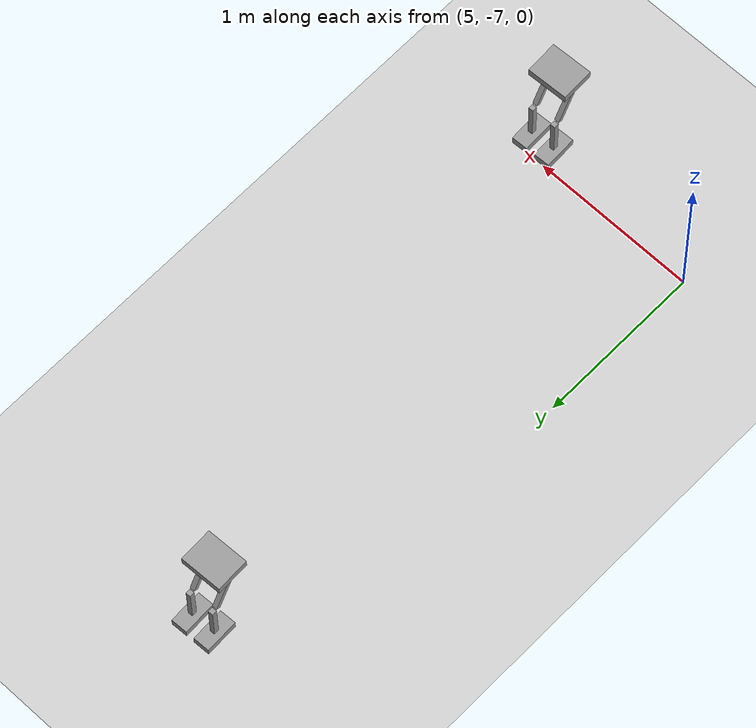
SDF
<sdf version="1.6">
 <world name="default">
  <model name="ground_plane">
   <static>1</static>
   <link name="link">
    <collision name="collision">
     <geometry><plane><normal>0 0 1</normal><size>100 100</size></plane></geometry>
     <surface><friction><ode><mu>100</mu><mu2>50</mu2></ode></friction></surface>
    </collision>
    <visual name="visual">
     <cast_shadows>0</cast_shadows>
     <geometry><plane><normal>0 0 1</normal><size>100 100</size></plane></geometry>
     <material>
      <script><uri>file://media/materials/scripts/gazebo.material</uri><name>Gazebo/Grey</name></script>
     </material>
    </visual>
   </link>
  </model>
  <model name="HumonoidRobot">
   <link name="link_0">
    <pose>-0.075081 0.045022 -0.236474 0 -0 0</pose>
    <inertial>
     <mass>1</mass>
     <inertia>
      <ixx>0.166667</ixx>
      <ixy>0</ixy>
      <ixz>0</ixz>
      <iyy>0.166667</iyy>
      <iyz>0</iyz>
      <izz>0.166667</izz>
     </inertia>
    </inertial>
    <visual name="visual">
     <geometry><box><size>0.1 0.2 0.05</size></box></geometry>
     <material>
      <lighting>1</lighting>
      <script><uri>file://media/materials/scripts/gazebo.material</uri><name>Gazebo/Grey</name></script>
      <shader type="pixel"><normal_map>__default__</normal_map></shader>
      <ambient>0.3 0.3 0.3 1</ambient>
      <diffuse>0.7 0.7 0.7 1</diffuse>
      <specular>0.01 0.01 0.01 1</specular>
      <emissive>0 0 0 1</emissive>
     </material>
    </visual>
    <collision name="collision">
     <geometry><box><size>0.1 0.2 0.05</size></box></geometry>
     <surface>
      <friction>
       <ode><mu>1</mu><mu2>1</mu2><fdir1>0 0 0</fdir1><slip1>0</slip1><slip2>0</slip2></ode>
       <torsional>
        <coefficient>1</coefficient>
        <patch_radius>0</patch_radius>
        <surface_radius>0</surface_radius>
        <use_patch_radius>1</use_patch_radius>
        <ode><slip>0</slip></ode>
       </torsional>
      </friction>
      <bounce><restitution_coefficient>0</restitution_coefficient><threshold>1e+06</threshold></bounce>
      <contact>
       <collide_without_contact>0</collide_without_contact>
       <collide_without_contact_bitmask>1</collide_without_contact_bitmask>
       <collide_bitmask>1</collide_bitmask>
       <ode>
        <soft_cfm>0</soft_cfm>
        <soft_erp>0.2</soft_erp>
        <kp>1e+13</kp>
        <kd>1</kd>
        <max_vel>0.01</max_vel>
        <min_depth>0</min_depth>
       </ode>
       <bullet>
        <split_impulse>1</split_impulse>
        <split_impulse_penetration_threshold>-0.01</split_impulse_penetration_threshold>
        <soft_cfm>0</soft_cfm>
        <soft_erp>0.2</soft_erp>
        <kp>1e+13</kp>
        <kd>1</kd>
       </bullet>
      </contact>
     </surface>
    </collision>
   </link>
   <link name="link_0_clone">
    <pose>0.074919 0.045022 -0.236474 0 -0 0</pose>
    <inertial>
     <mass>1</mass>
     <inertia>
      <ixx>0.166667</ixx>
      <ixy>0</ixy>
      <ixz>0</ixz>
      <iyy>0.166667</iyy>
      <iyz>0</iyz>
      <izz>0.166667</izz>
     </inertia>
    </inertial>
    <visual name="visual">
     <geometry><box><size>0.1 0.2 0.05</size></box></geometry>
     <material>
      <lighting>1</lighting>
      <script><uri>file://media/materials/scripts/gazebo.material</uri><name>Gazebo/Grey</name></script>
      <shader type="pixel"><normal_map>__default__</normal_map></shader>
      <ambient>0.3 0.3 0.3 1</ambient>
      <diffuse>0.7 0.7 0.7 1</diffuse>
      <specular>0.01 0.01 0.01 1</specular>
      <emissive>0 0 0 1</emissive>
     </material>
    </visual>
    <collision name="collision">
     <geometry><box><size>0.1 0.2 0.05</size></box></geometry>
     <surface>
      <friction>
       <ode><mu>1</mu><mu2>1</mu2><fdir1>0 0 0</fdir1><slip1>0</slip1><slip2>0</slip2></ode>
       <torsional>
        <coefficient>1</coefficient>
        <patch_radius>0</patch_radius>
        <surface_radius>0</surface_radius>
        <use_patch_radius>1</use_patch_radius>
        <ode><slip>0</slip></ode>
       </torsional>
      </friction>
      <bounce><restitution_coefficient>0</restitution_coefficient><threshold>1e+06</threshold></bounce>
      <contact>
       <collide_without_contact>0</collide_without_contact>
       <collide_without_contact_bitmask>1</collide_without_contact_bitmask>
       <collide_bitmask>1</collide_bitmask>
       <ode>
        <soft_cfm>0</soft_cfm>
        <soft_erp>0.2</soft_erp>
        <kp>1e+13</kp>
        <kd>1</kd>
        <max_vel>0.01</max_vel>
        <min_depth>0</min_depth>
       </ode>
       <bullet>
        <split_impulse>1</split_impulse>
        <split_impulse_penetration_threshold>-0.01</split_impulse_penetration_threshold>
        <soft_cfm>0</soft_cfm>
        <soft_erp>0.2</soft_erp>
        <kp>1e+13</kp>
        <kd>1</kd>
       </bullet>
      </contact>
     </surface>
    </collision>
   </link>
   <link name="link_0_clone_0">
    <pose>0.000486 -0.069978 0.341184 0 -0 0</pose>
    <inertial>
     <mass>1</mass>
     <inertia>
      <ixx>0.166667</ixx>
      <ixy>0</ixy>
      <ixz>0</ixz>
      <iyy>0.166667</iyy>
      <iyz>0</iyz>
      <izz>0.166667</izz>
     </inertia>
    </inertial>
    <visual name="visual">
     <geometry><box><size>0.25 0.2 0.05</size></box></geometry>
     <material>
      <lighting>1</lighting>
      <script><uri>file://media/materials/scripts/gazebo.material</uri><name>Gazebo/Grey</name></script>
      <shader type="pixel"><normal_map>__default__</normal_map></shader>
      <ambient>0.3 0.3 0.3 1</ambient>
      <diffuse>0.7 0.7 0.7 1</diffuse>
      <specular>0.01 0.01 0.01 1</specular>
      <emissive>0 0 0 1</emissive>
     </material>
    </visual>
    <collision name="collision">
     <geometry><box><size>0.25 0.2 0.05</size></box></geometry>
     <surface>
      <friction>
       <ode><mu>1</mu><mu2>1</mu2><fdir1>0 0 0</fdir1><slip1>0</slip1><slip2>0</slip2></ode>
       <torsional>
        <coefficient>1</coefficient>
        <patch_radius>0</patch_radius>
        <surface_radius>0</surface_radius>
        <use_patch_radius>1</use_patch_radius>
        <ode><slip>0</slip></ode>
       </torsional>
      </friction>
      <bounce><restitution_coefficient>0</restitution_coefficient><threshold>1e+06</threshold></bounce>
      <contact>
       <collide_without_contact>0</collide_without_contact>
       <collide_without_contact_bitmask>1</collide_without_contact_bitmask>
       <collide_bitmask>1</collide_bitmask>
       <ode>
        <soft_cfm>0</soft_cfm>
        <soft_erp>0.2</soft_erp>
        <kp>1e+13</kp>
        <kd>1</kd>
        <max_vel>0.01</max_vel>
        <min_depth>0</min_depth>
       </ode>
       <bullet>
        <split_impulse>1</split_impulse>
        <split_impulse_penetration_threshold>-0.01</split_impulse_penetration_threshold>
        <soft_cfm>0</soft_cfm>
        <soft_erp>0.2</soft_erp>
        <kp>1e+13</kp>
        <kd>1</kd>
       </bullet>
      </contact>
     </surface>
    </collision>
   </link>
   <link name="link_1">
    <pose>-0.075081 0.045022 -0.111474 0 -0 0</pose>
    <inertial>
     <mass>1</mass>
     <inertia>
      <ixx>0.166667</ixx>
      <ixy>0</ixy>
      <ixz>0</ixz>
      <iyy>0.166667</iyy>
      <iyz>0</iyz>
      <izz>0.166667</izz>
     </inertia>
    </inertial>
    <visual name="visual">
     <geometry><box><size>0.03 0.03 0.3</size></box></geometry>
     <material>
      <lighting>1</lighting>
      <script><uri>file://media/materials/scripts/gazebo.material</uri><name>Gazebo/Grey</name></script>
      <shader type="pixel"><normal_map>__default__</normal_map></shader>
      <ambient>0.3 0.3 0.3 1</ambient>
      <diffuse>0.7 0.7 0.7 1</diffuse>
      <specular>0.01 0.01 0.01 1</specular>
      <emissive>0 0 0 1</emissive>
     </material>
    </visual>
    <collision name="collision">
     <geometry><box><size>0.03 0.03 0.3</size></box></geometry>
     <surface>
      <friction>
       <ode><mu>1</mu><mu2>1</mu2><fdir1>0 0 0</fdir1><slip1>0</slip1><slip2>0</slip2></ode>
       <torsional>
        <coefficient>1</coefficient>
        <patch_radius>0</patch_radius>
        <surface_radius>0</surface_radius>
        <use_patch_radius>1</use_patch_radius>
        <ode><slip>0</slip></ode>
       </torsional>
      </friction>
      <bounce><restitution_coefficient>0</restitution_coefficient><threshold>1e+06</threshold></bounce>
      <contact>
       <collide_without_contact>0</collide_without_contact>
       <collide_without_contact_bitmask>1</collide_without_contact_bitmask>
       <collide_bitmask>1</collide_bitmask>
       <ode>
        <soft_cfm>0</soft_cfm>
        <soft_erp>0.2</soft_erp>
        <kp>1e+13</kp>
        <kd>1</kd>
        <max_vel>0.01</max_vel>
        <min_depth>0</min_depth>
       </ode>
       <bullet>
        <split_impulse>1</split_impulse>
        <split_impulse_penetration_threshold>-0.01</split_impulse_penetration_threshold>
        <soft_cfm>0</soft_cfm>
        <soft_erp>0.2</soft_erp>
        <kp>1e+13</kp>
        <kd>1</kd>
       </bullet>
      </contact>
     </surface>
    </collision>
   </link>
   <link name="link_1_clone">
    <pose>0.074919 0.045022 -0.111474 0 -0 0</pose>
    <inertial>
     <mass>1</mass>
     <inertia>
      <ixx>0.166667</ixx>
      <ixy>0</ixy>
      <ixz>0</ixz>
      <iyy>0.166667</iyy>
      <iyz>0</iyz>
      <izz>0.166667</izz>
     </inertia>
    </inertial>
    <visual name="visual">
     <geometry><box><size>0.03 0.03 0.3</size></box></geometry>
     <material>
      <lighting>1</lighting>
      <script><uri>file://media/materials/scripts/gazebo.material</uri><name>Gazebo/Grey</name></script>
      <shader type="pixel"><normal_map>__default__</normal_map></shader>
      <ambient>0.3 0.3 0.3 1</ambient>
      <diffuse>0.7 0.7 0.7 1</diffuse>
      <specular>0.01 0.01 0.01 1</specular>
      <emissive>0 0 0 1</emissive>
     </material>
    </visual>
    <collision name="collision">
     <geometry><box><size>0.03 0.03 0.3</size></box></geometry>
     <surface>
      <friction>
       <ode><mu>1</mu><mu2>1</mu2><fdir1>0 0 0</fdir1><slip1>0</slip1><slip2>0</slip2></ode>
       <torsional>
        <coefficient>1</coefficient>
        <patch_radius>0</patch_radius>
        <surface_radius>0</surface_radius>
        <use_patch_radius>1</use_patch_radius>
        <ode><slip>0</slip></ode>
       </torsional>
      </friction>
      <bounce><restitution_coefficient>0</restitution_coefficient><threshold>1e+06</threshold></bounce>
      <contact>
       <collide_without_contact>0</collide_without_contact>
       <collide_without_contact_bitmask>1</collide_without_contact_bitmask>
       <collide_bitmask>1</collide_bitmask>
       <ode>
        <soft_cfm>0</soft_cfm>
        <soft_erp>0.2</soft_erp>
        <kp>1e+13</kp>
        <kd>1</kd>
        <max_vel>0.01</max_vel>
        <min_depth>0</min_depth>
       </ode>
       <bullet>
        <split_impulse>1</split_impulse>
        <split_impulse_penetration_threshold>-0.01</split_impulse_penetration_threshold>
        <soft_cfm>0</soft_cfm>
        <soft_erp>0.2</soft_erp>
        <kp>1e+13</kp>
        <kd>1</kd>
       </bullet>
      </contact>
     </surface>
    </collision>
   </link>
   <link name="link_1_clone_0">
    <pose>-0.075081 -0.055055 0.177355 0.5 -0 0</pose>
    <inertial>
     <mass>1</mass>
     <inertia>
      <ixx>0.166667</ixx>
      <ixy>0</ixy>
      <ixz>0</ixz>
      <iyy>0.166667</iyy>
      <iyz>0</iyz>
      <izz>0.166667</izz>
     </inertia>
    </inertial>
    <visual name="visual">
     <geometry><box><size>0.03 0.03 0.3</size></box></geometry>
     <material>
      <lighting>1</lighting>
      <script><uri>file://media/materials/scripts/gazebo.material</uri><name>Gazebo/Grey</name></script>
      <shader type="pixel"><normal_map>__default__</normal_map></shader>
      <ambient>0.3 0.3 0.3 1</ambient>
      <diffuse>0.7 0.7 0.7 1</diffuse>
      <specular>0.01 0.01 0.01 1</specular>
      <emissive>0 0 0 1</emissive>
     </material>
    </visual>
    <collision name="collision">
     <geometry><box><size>0.03 0.03 0.3</size></box></geometry>
     <surface>
      <friction>
       <ode><mu>1</mu><mu2>1</mu2><fdir1>0 0 0</fdir1><slip1>0</slip1><slip2>0</slip2></ode>
       <torsional>
        <coefficient>1</coefficient>
        <patch_radius>0</patch_radius>
        <surface_radius>0</surface_radius>
        <use_patch_radius>1</use_patch_radius>
        <ode><slip>0</slip></ode>
       </torsional>
      </friction>
      <bounce><restitution_coefficient>0</restitution_coefficient><threshold>1e+06</threshold></bounce>
      <contact>
       <collide_without_contact>0</collide_without_contact>
       <collide_without_contact_bitmask>1</collide_without_contact_bitmask>
       <collide_bitmask>1</collide_bitmask>
       <ode>
        <soft_cfm>0</soft_cfm>
        <soft_erp>0.2</soft_erp>
        <kp>1e+13</kp>
        <kd>1</kd>
        <max_vel>0.01</max_vel>
        <min_depth>0</min_depth>
       </ode>
       <bullet>
        <split_impulse>1</split_impulse>
        <split_impulse_penetration_threshold>-0.01</split_impulse_penetration_threshold>
        <soft_cfm>0</soft_cfm>
        <soft_erp>0.2</soft_erp>
        <kp>1e+13</kp>
        <kd>1</kd>
       </bullet>
      </contact>
     </surface>
    </collision>
   </link>
   <link name="link_1_clone_1">
    <pose>0.074919 -0.055055 0.177355 0.5 -0 0</pose>
    <inertial>
     <mass>1</mass>
     <inertia>
      <ixx>0.166667</ixx>
      <ixy>0</ixy>
      <ixz>0</ixz>
      <iyy>0.166667</iyy>
      <iyz>0</iyz>
      <izz>0.166667</izz>
     </inertia>
    </inertial>
    <visual name="visual">
     <geometry><box><size>0.03 0.03 0.3</size></box></geometry>
     <material>
      <lighting>1</lighting>
      <script><uri>file://media/materials/scripts/gazebo.material</uri><name>Gazebo/Grey</name></script>
      <shader type="pixel"><normal_map>__default__</normal_map></shader>
      <ambient>0.3 0.3 0.3 1</ambient>
      <diffuse>0.7 0.7 0.7 1</diffuse>
      <specular>0.01 0.01 0.01 1</specular>
      <emissive>0 0 0 1</emissive>
     </material>
    </visual>
    <collision name="collision">
     <geometry><box><size>0.03 0.03 0.3</size></box></geometry>
     <surface>
      <friction>
       <ode><mu>1</mu><mu2>1</mu2><fdir1>0 0 0</fdir1><slip1>0</slip1><slip2>0</slip2></ode>
       <torsional>
        <coefficient>1</coefficient>
        <patch_radius>0</patch_radius>
        <surface_radius>0</surface_radius>
        <use_patch_radius>1</use_patch_radius>
        <ode><slip>0</slip></ode>
       </torsional>
      </friction>
      <bounce><restitution_coefficient>0</restitution_coefficient><threshold>1e+06</threshold></bounce>
      <contact>
       <collide_without_contact>0</collide_without_contact>
       <collide_without_contact_bitmask>1</collide_without_contact_bitmask>
       <collide_bitmask>1</collide_bitmask>
       <ode>
        <soft_cfm>0</soft_cfm>
        <soft_erp>0.2</soft_erp>
        <kp>1e+13</kp>
        <kd>1</kd>
        <max_vel>0.01</max_vel>
        <min_depth>0</min_depth>
       </ode>
       <bullet>
        <split_impulse>1</split_impulse>
        <split_impulse_penetration_threshold>-0.01</split_impulse_penetration_threshold>
        <soft_cfm>0</soft_cfm>
        <soft_erp>0.2</soft_erp>
        <kp>1e+13</kp>
        <kd>1</kd>
       </bullet>
      </contact>
     </surface>
    </collision>
   </link>
   <joint name="link_0_JOINT_0" type="fixed">
    <parent>link_0</parent>
    <child>link_1</child>
    <physics>
     <ode><limit><cfm>0</cfm><erp>0.2</erp></limit><suspension><cfm>0</cfm><erp>0.2</erp></suspension></ode>
    </physics>
   </joint>
   <joint name="link_0_clone_JOINT_1" type="fixed">
    <parent>link_0_clone</parent>
    <child>link_1_clone</child>
    <physics>
     <ode><limit><cfm>0</cfm><erp>0.2</erp></limit><suspension><cfm>0</cfm><erp>0.2</erp></suspension></ode>
    </physics>
   </joint>
   <joint name="link_1_JOINT_2" type="fixed">
    <parent>link_1</parent>
    <child>link_1_clone_0</child>
    <physics>
     <ode><limit><cfm>0</cfm><erp>0.2</erp></limit><suspension><cfm>0</cfm><erp>0.2</erp></suspension></ode>
    </physics>
   </joint>
   <joint name="link_1_clone_0_JOINT_4" type="fixed">
    <parent>link_1_clone_0</parent>
    <child>link_0_clone_0</child>
    <physics>
     <ode><limit><cfm>0</cfm><erp>0.2</erp></limit><suspension><cfm>0</cfm><erp>0.2</erp></suspension></ode>
    </physics>
   </joint>
   <joint name="link_1_clone_1_JOINT_5" type="fixed">
    <parent>link_1_clone_1</parent>
    <child>link_0_clone_0</child>
    <physics>
     <ode><limit><cfm>0</cfm><erp>0.2</erp></limit><suspension><cfm>0</cfm><erp>0.2</erp></suspension></ode>
    </physics>
   </joint>
   <joint name="link_1_clone_JOINT_3" type="revolute">
    <parent>link_1_clone</parent>
    <child>link_1_clone_1</child>
    <axis>
     <xyz>1 0 0</xyz>
     <use_parent_model_frame>0</use_parent_model_frame>
     <limit>
      <lower>-1.79769e+308</lower>
      <upper>1.79769e+308</upper>
      <effort>-1</effort>
      <velocity>-1</velocity>
     </limit>
     <dynamics>
      <spring_reference>0</spring_reference>
      <spring_stiffness>0</spring_stiffness>
      <damping>0</damping>
     </dynamics>
    </axis>
    <physics>
     <ode><limit><cfm>0</cfm><erp>0.2</erp></limit><suspension><cfm>0</cfm><erp>0.2</erp></suspension></ode>
    </physics>
   </joint>
   <static>0</static>
   <pose>6.09565 -7.1426 0.261474 -0 -1e-06 0.038977</pose>
  </model>
  <model name="HumonoidRobot_1">
   <link name="link_0">
    <pose>-0.075081 0.045022 -0.236474 0 -0 0</pose>
    <inertial>
     <mass>1</mass>
     <inertia>
      <ixx>0.166667</ixx>
      <ixy>0</ixy>
      <ixz>0</ixz>
      <iyy>0.166667</iyy>
      <iyz>0</iyz>
      <izz>0.166667</izz>
     </inertia>
    </inertial>
    <visual name="visual">
     <geometry><box><size>0.1 0.2 0.05</size></box></geometry>
     <material>
      <lighting>1</lighting>
      <script><uri>file://media/materials/scripts/gazebo.material</uri><name>Gazebo/Grey</name></script>
      <shader type="pixel"><normal_map>__default__</normal_map></shader>
      <ambient>0.3 0.3 0.3 1</ambient>
      <diffuse>0.7 0.7 0.7 1</diffuse>
      <specular>0.01 0.01 0.01 1</specular>
      <emissive>0 0 0 1</emissive>
     </material>
    </visual>
    <collision name="collision">
     <geometry><box><size>0.1 0.2 0.05</size></box></geometry>
     <surface>
      <friction>
       <ode><mu>1</mu><mu2>1</mu2><fdir1>0 0 0</fdir1><slip1>0</slip1><slip2>0</slip2></ode>
       <torsional>
        <coefficient>1</coefficient>
        <patch_radius>0</patch_radius>
        <surface_radius>0</surface_radius>
        <use_patch_radius>1</use_patch_radius>
        <ode><slip>0</slip></ode>
       </torsional>
      </friction>
      <bounce><restitution_coefficient>0</restitution_coefficient><threshold>1e+06</threshold></bounce>
      <contact>
       <collide_without_contact>0</collide_without_contact>
       <collide_without_contact_bitmask>1</collide_without_contact_bitmask>
       <collide_bitmask>1</collide_bitmask>
       <ode>
        <soft_cfm>0</soft_cfm>
        <soft_erp>0.2</soft_erp>
        <kp>1e+13</kp>
        <kd>1</kd>
        <max_vel>0.01</max_vel>
        <min_depth>0</min_depth>
       </ode>
       <bullet>
        <split_impulse>1</split_impulse>
        <split_impulse_penetration_threshold>-0.01</split_impulse_penetration_threshold>
        <soft_cfm>0</soft_cfm>
        <soft_erp>0.2</soft_erp>
        <kp>1e+13</kp>
        <kd>1</kd>
       </bullet>
      </contact>
     </surface>
    </collision>
   </link>
   <link name="link_0_clone">
    <pose>0.074919 0.045022 -0.236474 0 -0 0</pose>
    <inertial>
     <mass>1</mass>
     <inertia>
      <ixx>0.166667</ixx>
      <ixy>0</ixy>
      <ixz>0</ixz>
      <iyy>0.166667</iyy>
      <iyz>0</iyz>
      <izz>0.166667</izz>
     </inertia>
    </inertial>
    <visual name="visual">
     <geometry><box><size>0.1 0.2 0.05</size></box></geometry>
     <material>
      <lighting>1</lighting>
      <script><uri>file://media/materials/scripts/gazebo.material</uri><name>Gazebo/Grey</name></script>
      <shader type="pixel"><normal_map>__default__</normal_map></shader>
      <ambient>0.3 0.3 0.3 1</ambient>
      <diffuse>0.7 0.7 0.7 1</diffuse>
      <specular>0.01 0.01 0.01 1</specular>
      <emissive>0 0 0 1</emissive>
     </material>
    </visual>
    <collision name="collision">
     <geometry><box><size>0.1 0.2 0.05</size></box></geometry>
     <surface>
      <friction>
       <ode><mu>1</mu><mu2>1</mu2><fdir1>0 0 0</fdir1><slip1>0</slip1><slip2>0</slip2></ode>
       <torsional>
        <coefficient>1</coefficient>
        <patch_radius>0</patch_radius>
        <surface_radius>0</surface_radius>
        <use_patch_radius>1</use_patch_radius>
        <ode><slip>0</slip></ode>
       </torsional>
      </friction>
      <bounce><restitution_coefficient>0</restitution_coefficient><threshold>1e+06</threshold></bounce>
      <contact>
       <collide_without_contact>0</collide_without_contact>
       <collide_without_contact_bitmask>1</collide_without_contact_bitmask>
       <collide_bitmask>1</collide_bitmask>
       <ode>
        <soft_cfm>0</soft_cfm>
        <soft_erp>0.2</soft_erp>
        <kp>1e+13</kp>
        <kd>1</kd>
        <max_vel>0.01</max_vel>
        <min_depth>0</min_depth>
       </ode>
       <bullet>
        <split_impulse>1</split_impulse>
        <split_impulse_penetration_threshold>-0.01</split_impulse_penetration_threshold>
        <soft_cfm>0</soft_cfm>
        <soft_erp>0.2</soft_erp>
        <kp>1e+13</kp>
        <kd>1</kd>
       </bullet>
      </contact>
     </surface>
    </collision>
   </link>
   <link name="link_0_clone_0">
    <pose>0.000486 -0.069978 0.341184 0 -0 0</pose>
    <inertial>
     <mass>1</mass>
     <inertia>
      <ixx>0.166667</ixx>
      <ixy>0</ixy>
      <ixz>0</ixz>
      <iyy>0.166667</iyy>
      <iyz>0</iyz>
      <izz>0.166667</izz>
     </inertia>
    </inertial>
    <visual name="visual">
     <geometry><box><size>0.25 0.2 0.05</size></box></geometry>
     <material>
      <lighting>1</lighting>
      <script><uri>file://media/materials/scripts/gazebo.material</uri><name>Gazebo/Grey</name></script>
      <shader type="pixel"><normal_map>__default__</normal_map></shader>
      <ambient>0.3 0.3 0.3 1</ambient>
      <diffuse>0.7 0.7 0.7 1</diffuse>
      <specular>0.01 0.01 0.01 1</specular>
      <emissive>0 0 0 1</emissive>
     </material>
    </visual>
    <collision name="collision">
     <geometry><box><size>0.25 0.2 0.05</size></box></geometry>
     <surface>
      <friction>
       <ode><mu>1</mu><mu2>1</mu2><fdir1>0 0 0</fdir1><slip1>0</slip1><slip2>0</slip2></ode>
       <torsional>
        <coefficient>1</coefficient>
        <patch_radius>0</patch_radius>
        <surface_radius>0</surface_radius>
        <use_patch_radius>1</use_patch_radius>
        <ode><slip>0</slip></ode>
       </torsional>
      </friction>
      <bounce><restitution_coefficient>0</restitution_coefficient><threshold>1e+06</threshold></bounce>
      <contact>
       <collide_without_contact>0</collide_without_contact>
       <collide_without_contact_bitmask>1</collide_without_contact_bitmask>
       <collide_bitmask>1</collide_bitmask>
       <ode>
        <soft_cfm>0</soft_cfm>
        <soft_erp>0.2</soft_erp>
        <kp>1e+13</kp>
        <kd>1</kd>
        <max_vel>0.01</max_vel>
        <min_depth>0</min_depth>
       </ode>
       <bullet>
        <split_impulse>1</split_impulse>
        <split_impulse_penetration_threshold>-0.01</split_impulse_penetration_threshold>
        <soft_cfm>0</soft_cfm>
        <soft_erp>0.2</soft_erp>
        <kp>1e+13</kp>
        <kd>1</kd>
       </bullet>
      </contact>
     </surface>
    </collision>
   </link>
   <link name="link_1">
    <pose>-0.075081 0.045022 -0.111474 0 -0 0</pose>
    <inertial>
     <mass>1</mass>
     <inertia>
      <ixx>0.166667</ixx>
      <ixy>0</ixy>
      <ixz>0</ixz>
      <iyy>0.166667</iyy>
      <iyz>0</iyz>
      <izz>0.166667</izz>
     </inertia>
    </inertial>
    <visual name="visual">
     <geometry><box><size>0.03 0.03 0.3</size></box></geometry>
     <material>
      <lighting>1</lighting>
      <script><uri>file://media/materials/scripts/gazebo.material</uri><name>Gazebo/Grey</name></script>
      <shader type="pixel"><normal_map>__default__</normal_map></shader>
      <ambient>0.3 0.3 0.3 1</ambient>
      <diffuse>0.7 0.7 0.7 1</diffuse>
      <specular>0.01 0.01 0.01 1</specular>
      <emissive>0 0 0 1</emissive>
     </material>
    </visual>
    <collision name="collision">
     <geometry><box><size>0.03 0.03 0.3</size></box></geometry>
     <surface>
      <friction>
       <ode><mu>1</mu><mu2>1</mu2><fdir1>0 0 0</fdir1><slip1>0</slip1><slip2>0</slip2></ode>
       <torsional>
        <coefficient>1</coefficient>
        <patch_radius>0</patch_radius>
        <surface_radius>0</surface_radius>
        <use_patch_radius>1</use_patch_radius>
        <ode><slip>0</slip></ode>
       </torsional>
      </friction>
      <bounce><restitution_coefficient>0</restitution_coefficient><threshold>1e+06</threshold></bounce>
      <contact>
       <collide_without_contact>0</collide_without_contact>
       <collide_without_contact_bitmask>1</collide_without_contact_bitmask>
       <collide_bitmask>1</collide_bitmask>
       <ode>
        <soft_cfm>0</soft_cfm>
        <soft_erp>0.2</soft_erp>
        <kp>1e+13</kp>
        <kd>1</kd>
        <max_vel>0.01</max_vel>
        <min_depth>0</min_depth>
       </ode>
       <bullet>
        <split_impulse>1</split_impulse>
        <split_impulse_penetration_threshold>-0.01</split_impulse_penetration_threshold>
        <soft_cfm>0</soft_cfm>
        <soft_erp>0.2</soft_erp>
        <kp>1e+13</kp>
        <kd>1</kd>
       </bullet>
      </contact>
     </surface>
    </collision>
   </link>
   <link name="link_1_clone">
    <pose>0.074919 0.045022 -0.111474 0 -0 0</pose>
    <inertial>
     <mass>1</mass>
     <inertia>
      <ixx>0.166667</ixx>
      <ixy>0</ixy>
      <ixz>0</ixz>
      <iyy>0.166667</iyy>
      <iyz>0</iyz>
      <izz>0.166667</izz>
     </inertia>
    </inertial>
    <visual name="visual">
     <geometry><box><size>0.03 0.03 0.3</size></box></geometry>
     <material>
      <lighting>1</lighting>
      <script><uri>file://media/materials/scripts/gazebo.material</uri><name>Gazebo/Grey</name></script>
      <shader type="pixel"><normal_map>__default__</normal_map></shader>
      <ambient>0.3 0.3 0.3 1</ambient>
      <diffuse>0.7 0.7 0.7 1</diffuse>
      <specular>0.01 0.01 0.01 1</specular>
      <emissive>0 0 0 1</emissive>
     </material>
    </visual>
    <collision name="collision">
     <geometry><box><size>0.03 0.03 0.3</size></box></geometry>
     <surface>
      <friction>
       <ode><mu>1</mu><mu2>1</mu2><fdir1>0 0 0</fdir1><slip1>0</slip1><slip2>0</slip2></ode>
       <torsional>
        <coefficient>1</coefficient>
        <patch_radius>0</patch_radius>
        <surface_radius>0</surface_radius>
        <use_patch_radius>1</use_patch_radius>
        <ode><slip>0</slip></ode>
       </torsional>
      </friction>
      <bounce><restitution_coefficient>0</restitution_coefficient><threshold>1e+06</threshold></bounce>
      <contact>
       <collide_without_contact>0</collide_without_contact>
       <collide_without_contact_bitmask>1</collide_without_contact_bitmask>
       <collide_bitmask>1</collide_bitmask>
       <ode>
        <soft_cfm>0</soft_cfm>
        <soft_erp>0.2</soft_erp>
        <kp>1e+13</kp>
        <kd>1</kd>
        <max_vel>0.01</max_vel>
        <min_depth>0</min_depth>
       </ode>
       <bullet>
        <split_impulse>1</split_impulse>
        <split_impulse_penetration_threshold>-0.01</split_impulse_penetration_threshold>
        <soft_cfm>0</soft_cfm>
        <soft_erp>0.2</soft_erp>
        <kp>1e+13</kp>
        <kd>1</kd>
       </bullet>
      </contact>
     </surface>
    </collision>
   </link>
   <link name="link_1_clone_0">
    <pose>-0.075081 -0.055055 0.177355 0.5 -0 0</pose>
    <inertial>
     <mass>1</mass>
     <inertia>
      <ixx>0.166667</ixx>
      <ixy>0</ixy>
      <ixz>0</ixz>
      <iyy>0.166667</iyy>
      <iyz>0</iyz>
      <izz>0.166667</izz>
     </inertia>
    </inertial>
    <visual name="visual">
     <geometry><box><size>0.03 0.03 0.3</size></box></geometry>
     <material>
      <lighting>1</lighting>
      <script><uri>file://media/materials/scripts/gazebo.material</uri><name>Gazebo/Grey</name></script>
      <shader type="pixel"><normal_map>__default__</normal_map></shader>
      <ambient>0.3 0.3 0.3 1</ambient>
      <diffuse>0.7 0.7 0.7 1</diffuse>
      <specular>0.01 0.01 0.01 1</specular>
      <emissive>0 0 0 1</emissive>
     </material>
    </visual>
    <collision name="collision">
     <geometry><box><size>0.03 0.03 0.3</size></box></geometry>
     <surface>
      <friction>
       <ode><mu>1</mu><mu2>1</mu2><fdir1>0 0 0</fdir1><slip1>0</slip1><slip2>0</slip2></ode>
       <torsional>
        <coefficient>1</coefficient>
        <patch_radius>0</patch_radius>
        <surface_radius>0</surface_radius>
        <use_patch_radius>1</use_patch_radius>
        <ode><slip>0</slip></ode>
       </torsional>
      </friction>
      <bounce><restitution_coefficient>0</restitution_coefficient><threshold>1e+06</threshold></bounce>
      <contact>
       <collide_without_contact>0</collide_without_contact>
       <collide_without_contact_bitmask>1</collide_without_contact_bitmask>
       <collide_bitmask>1</collide_bitmask>
       <ode>
        <soft_cfm>0</soft_cfm>
        <soft_erp>0.2</soft_erp>
        <kp>1e+13</kp>
        <kd>1</kd>
        <max_vel>0.01</max_vel>
        <min_depth>0</min_depth>
       </ode>
       <bullet>
        <split_impulse>1</split_impulse>
        <split_impulse_penetration_threshold>-0.01</split_impulse_penetration_threshold>
        <soft_cfm>0</soft_cfm>
        <soft_erp>0.2</soft_erp>
        <kp>1e+13</kp>
        <kd>1</kd>
       </bullet>
      </contact>
     </surface>
    </collision>
   </link>
   <link name="link_1_clone_1">
    <pose>0.074919 -0.055055 0.177355 0.5 -0 0</pose>
    <inertial>
     <mass>1</mass>
     <inertia>
      <ixx>0.166667</ixx>
      <ixy>0</ixy>
      <ixz>0</ixz>
      <iyy>0.166667</iyy>
      <iyz>0</iyz>
      <izz>0.166667</izz>
     </inertia>
    </inertial>
    <visual name="visual">
     <geometry><box><size>0.03 0.03 0.3</size></box></geometry>
     <material>
      <lighting>1</lighting>
      <script><uri>file://media/materials/scripts/gazebo.material</uri><name>Gazebo/Grey</name></script>
      <shader type="pixel"><normal_map>__default__</normal_map></shader>
      <ambient>0.3 0.3 0.3 1</ambient>
      <diffuse>0.7 0.7 0.7 1</diffuse>
      <specular>0.01 0.01 0.01 1</specular>
      <emissive>0 0 0 1</emissive>
     </material>
    </visual>
    <collision name="collision">
     <geometry><box><size>0.03 0.03 0.3</size></box></geometry>
     <surface>
      <friction>
       <ode><mu>1</mu><mu2>1</mu2><fdir1>0 0 0</fdir1><slip1>0</slip1><slip2>0</slip2></ode>
       <torsional>
        <coefficient>1</coefficient>
        <patch_radius>0</patch_radius>
        <surface_radius>0</surface_radius>
        <use_patch_radius>1</use_patch_radius>
        <ode><slip>0</slip></ode>
       </torsional>
      </friction>
      <bounce><restitution_coefficient>0</restitution_coefficient><threshold>1e+06</threshold></bounce>
      <contact>
       <collide_without_contact>0</collide_without_contact>
       <collide_without_contact_bitmask>1</collide_without_contact_bitmask>
       <collide_bitmask>1</collide_bitmask>
       <ode>
        <soft_cfm>0</soft_cfm>
        <soft_erp>0.2</soft_erp>
        <kp>1e+13</kp>
        <kd>1</kd>
        <max_vel>0.01</max_vel>
        <min_depth>0</min_depth>
       </ode>
       <bullet>
        <split_impulse>1</split_impulse>
        <split_impulse_penetration_threshold>-0.01</split_impulse_penetration_threshold>
        <soft_cfm>0</soft_cfm>
        <soft_erp>0.2</soft_erp>
        <kp>1e+13</kp>
        <kd>1</kd>
       </bullet>
      </contact>
     </surface>
    </collision>
   </link>
   <joint name="link_0_JOINT_0" type="fixed">
    <parent>link_0</parent>
    <child>link_1</child>
    <physics>
     <ode><limit><cfm>0</cfm><erp>0.2</erp></limit><suspension><cfm>0</cfm><erp>0.2</erp></suspension></ode>
    </physics>
   </joint>
   <joint name="link_0_clone_JOINT_1" type="fixed">
    <parent>link_0_clone</parent>
    <child>link_1_clone</child>
    <physics>
     <ode><limit><cfm>0</cfm><erp>0.2</erp></limit><suspension><cfm>0</cfm><erp>0.2</erp></suspension></ode>
    </physics>
   </joint>
   <joint name="link_1_JOINT_2" type="fixed">
    <parent>link_1</parent>
    <child>link_1_clone_0</child>
    <physics>
     <ode><limit><cfm>0</cfm><erp>0.2</erp></limit><suspension><cfm>0</cfm><erp>0.2</erp></suspension></ode>
    </physics>
   </joint>
   <joint name="link_1_clone_0_JOINT_4" type="fixed">
    <parent>link_1_clone_0</parent>
    <child>link_0_clone_0</child>
    <physics>
     <ode><limit><cfm>0</cfm><erp>0.2</erp></limit><suspension><cfm>0</cfm><erp>0.2</erp></suspension></ode>
    </physics>
   </joint>
   <joint name="link_1_clone_1_JOINT_5" type="fixed">
    <parent>link_1_clone_1</parent>
    <child>link_0_clone_0</child>
    <physics>
     <ode><limit><cfm>0</cfm><erp>0.2</erp></limit><suspension><cfm>0</cfm><erp>0.2</erp></suspension></ode>
    </physics>
   </joint>
   <joint name="link_1_clone_JOINT_3" type="revolute">
    <parent>link_1_clone</parent>
    <child>link_1_clone_1</child>
    <axis>
     <xyz>1 0 0</xyz>
     <use_parent_model_frame>0</use_parent_model_frame>
     <limit>
      <lower>-1.79769e+308</lower>
      <upper>1.79769e+308</upper>
      <effort>-1</effort>
      <velocity>-1</velocity>
     </limit>
     <dynamics>
      <spring_reference>0</spring_reference>
      <spring_stiffness>0</spring_stiffness>
      <damping>0</damping>
     </dynamics>
    </axis>
    <physics>
     <ode><limit><cfm>0</cfm><erp>0.2</erp></limit><suspension><cfm>0</cfm><erp>0.2</erp></suspension></ode>
    </physics>
   </joint>
   <static>0</static>
   <pose>5.45938 -3.95167 0.261465 2e-06 -4e-06 0.039139</pose>
  </model>
 </world>
</sdf>
